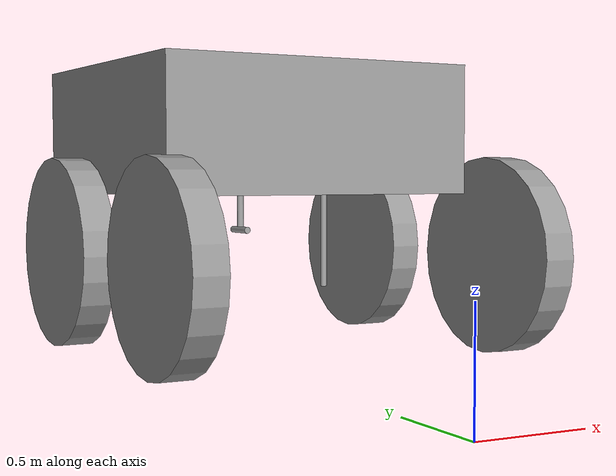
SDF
<?xml version='1.0'?>
<sdf version='1.7'>
  <model name='robot_with_arm_final'>
    <link name='link_0'>
      <inertial>
        <mass>1</mass>
        <inertia>
          <ixx>0.166667</ixx>
          <ixy>0</ixy>
          <ixz>0</ixz>
          <iyy>0.166667</iyy>
          <iyz>0</iyz>
          <izz>0.166667</izz>
        </inertia>
        <pose>0 0 0 0 -0 0</pose>
      </inertial>
      <pose>0.16 0 0.23032 0 -0 0</pose>
      <gravity>1</gravity>
      <self_collide>0</self_collide>
      <kinematic>0</kinematic>
      <enable_wind>0</enable_wind>
      <visual name='visual'>
        <pose>0 0 0 0 -0 0</pose>
        <geometry>
          <box>
            <size>1 1 0.4</size>
          </box>
        </geometry>
        <material>
          <lighting>1</lighting>
          <script>
            <uri>file://media/materials/scripts/gazebo.material</uri>
            <name>Gazebo/Grey</name>
          </script>
          <shader type='pixel'>
            <normal_map>__default__</normal_map>
          </shader>
          <ambient>0.3 0.3 0.3 1</ambient>
          <diffuse>0.7 0.7 0.7 1</diffuse>
          <specular>0.01 0.01 0.01 1</specular>
          <emissive>0 0 0 1</emissive>
        </material>
        <transparency>0</transparency>
        <cast_shadows>1</cast_shadows>
      </visual>
      <collision name='collision'>
        <laser_retro>0</laser_retro>
        <max_contacts>10</max_contacts>
        <pose>0 0 0 0 -0 0</pose>
        <geometry>
          <box>
            <size>1 1 0.4</size>
          </box>
        </geometry>
        <surface>
          <friction>
            <ode>
              <mu>1</mu>
              <mu2>1</mu2>
              <fdir1>0 0 0</fdir1>
              <slip1>0</slip1>
              <slip2>0</slip2>
            </ode>
            <torsional>
              <coefficient>1</coefficient>
              <patch_radius>0</patch_radius>
              <surface_radius>0</surface_radius>
              <use_patch_radius>1</use_patch_radius>
              <ode>
                <slip>0</slip>
              </ode>
            </torsional>
          </friction>
          <bounce>
            <restitution_coefficient>0</restitution_coefficient>
            <threshold>1e+06</threshold>
          </bounce>
          <contact>
            <collide_without_contact>0</collide_without_contact>
            <collide_without_contact_bitmask>1</collide_without_contact_bitmask>
            <collide_bitmask>1</collide_bitmask>
            <ode>
              <soft_cfm>0</soft_cfm>
              <soft_erp>0.2</soft_erp>
              <kp>1e+13</kp>
              <kd>1</kd>
              <max_vel>0.01</max_vel>
              <min_depth>0</min_depth>
            </ode>
            <bullet>
              <split_impulse>1</split_impulse>
              <split_impulse_penetration_threshold>-0.01</split_impulse_penetration_threshold>
              <soft_cfm>0</soft_cfm>
              <soft_erp>0.2</soft_erp>
              <kp>1e+13</kp>
              <kd>1</kd>
            </bullet>
          </contact>
        </surface>
      </collision>
    </link>
    <link name='link_1'>
      <inertial>
        <mass>1</mass>
        <inertia>
          <ixx>0.145833</ixx>
          <ixy>0</ixy>
          <ixz>0</ixz>
          <iyy>0.145833</iyy>
          <iyz>0</iyz>
          <izz>0.125</izz>
        </inertia>
        <pose>0 0 0 0 -0 0</pose>
      </inertial>
      <pose>-0.44 0.55 -0.15758 -1.5708 -0 0</pose>
      <gravity>1</gravity>
      <self_collide>0</self_collide>
      <kinematic>0</kinematic>
      <enable_wind>0</enable_wind>
      <visual name='visual'>
        <pose>0 0 0 0 -0 0</pose>
        <geometry>
          <cylinder>
            <radius>0.3</radius>
            <length>0.1</length>
          </cylinder>
        </geometry>
        <material>
          <lighting>1</lighting>
          <script>
            <uri>file://media/materials/scripts/gazebo.material</uri>
            <name>Gazebo/Grey</name>
          </script>
          <shader type='pixel'>
            <normal_map>__default__</normal_map>
          </shader>
          <ambient>0.3 0.3 0.3 1</ambient>
          <diffuse>0.7 0.7 0.7 1</diffuse>
          <specular>0.01 0.01 0.01 1</specular>
          <emissive>0 0 0 1</emissive>
        </material>
        <transparency>0</transparency>
        <cast_shadows>1</cast_shadows>
      </visual>
      <collision name='collision'>
        <laser_retro>0</laser_retro>
        <max_contacts>10</max_contacts>
        <pose>0 0 0 0 -0 0</pose>
        <geometry>
          <cylinder>
            <radius>0.3</radius>
            <length>0.1</length>
          </cylinder>
        </geometry>
        <surface>
          <friction>
            <ode>
              <mu>1</mu>
              <mu2>1</mu2>
              <fdir1>0 0 0</fdir1>
              <slip1>0</slip1>
              <slip2>0</slip2>
            </ode>
            <torsional>
              <coefficient>1</coefficient>
              <patch_radius>0</patch_radius>
              <surface_radius>0</surface_radius>
              <use_patch_radius>1</use_patch_radius>
              <ode>
                <slip>0</slip>
              </ode>
            </torsional>
          </friction>
          <bounce>
            <restitution_coefficient>0</restitution_coefficient>
            <threshold>1e+06</threshold>
          </bounce>
          <contact>
            <collide_without_contact>0</collide_without_contact>
            <collide_without_contact_bitmask>1</collide_without_contact_bitmask>
            <collide_bitmask>1</collide_bitmask>
            <ode>
              <soft_cfm>0</soft_cfm>
              <soft_erp>0.2</soft_erp>
              <kp>1e+13</kp>
              <kd>1</kd>
              <max_vel>0.01</max_vel>
              <min_depth>0</min_depth>
            </ode>
            <bullet>
              <split_impulse>1</split_impulse>
              <split_impulse_penetration_threshold>-0.01</split_impulse_penetration_threshold>
              <soft_cfm>0</soft_cfm>
              <soft_erp>0.2</soft_erp>
              <kp>1e+13</kp>
              <kd>1</kd>
            </bullet>
          </contact>
        </surface>
      </collision>
    </link>
    <link name='link_1_clone'>
      <inertial>
        <mass>1</mass>
        <inertia>
          <ixx>0.145833</ixx>
          <ixy>0</ixy>
          <ixz>0</ixz>
          <iyy>0.145833</iyy>
          <iyz>0</iyz>
          <izz>0.125</izz>
        </inertia>
        <pose>0 0 0 0 -0 0</pose>
      </inertial>
      <pose>0.36 -0.55 -0.15758 -1.5708 -0 0</pose>
      <gravity>1</gravity>
      <self_collide>0</self_collide>
      <kinematic>0</kinematic>
      <enable_wind>0</enable_wind>
      <visual name='visual'>
        <pose>0 0 0 0 -0 0</pose>
        <geometry>
          <cylinder>
            <radius>0.3</radius>
            <length>0.1</length>
          </cylinder>
        </geometry>
        <material>
          <lighting>1</lighting>
          <script>
            <uri>file://media/materials/scripts/gazebo.material</uri>
            <name>Gazebo/Grey</name>
          </script>
          <shader type='pixel'>
            <normal_map>__default__</normal_map>
          </shader>
          <ambient>0.3 0.3 0.3 1</ambient>
          <diffuse>0.7 0.7 0.7 1</diffuse>
          <specular>0.01 0.01 0.01 1</specular>
          <emissive>0 0 0 1</emissive>
        </material>
        <transparency>0</transparency>
        <cast_shadows>1</cast_shadows>
      </visual>
      <collision name='collision'>
        <laser_retro>0</laser_retro>
        <max_contacts>10</max_contacts>
        <pose>0 0 0 0 -0 0</pose>
        <geometry>
          <cylinder>
            <radius>0.3</radius>
            <length>0.1</length>
          </cylinder>
        </geometry>
        <surface>
          <friction>
            <ode>
              <mu>1</mu>
              <mu2>1</mu2>
              <fdir1>0 0 0</fdir1>
              <slip1>0</slip1>
              <slip2>0</slip2>
            </ode>
            <torsional>
              <coefficient>1</coefficient>
              <patch_radius>0</patch_radius>
              <surface_radius>0</surface_radius>
              <use_patch_radius>1</use_patch_radius>
              <ode>
                <slip>0</slip>
              </ode>
            </torsional>
          </friction>
          <bounce>
            <restitution_coefficient>0</restitution_coefficient>
            <threshold>1e+06</threshold>
          </bounce>
          <contact>
            <collide_without_contact>0</collide_without_contact>
            <collide_without_contact_bitmask>1</collide_without_contact_bitmask>
            <collide_bitmask>1</collide_bitmask>
            <ode>
              <soft_cfm>0</soft_cfm>
              <soft_erp>0.2</soft_erp>
              <kp>1e+13</kp>
              <kd>1</kd>
              <max_vel>0.01</max_vel>
              <min_depth>0</min_depth>
            </ode>
            <bullet>
              <split_impulse>1</split_impulse>
              <split_impulse_penetration_threshold>-0.01</split_impulse_penetration_threshold>
              <soft_cfm>0</soft_cfm>
              <soft_erp>0.2</soft_erp>
              <kp>1e+13</kp>
              <kd>1</kd>
            </bullet>
          </contact>
        </surface>
      </collision>
    </link>
    <link name='link_1_clone_0'>
      <inertial>
        <mass>1</mass>
        <inertia>
          <ixx>0.145833</ixx>
          <ixy>0</ixy>
          <ixz>0</ixz>
          <iyy>0.145833</iyy>
          <iyz>0</iyz>
          <izz>0.125</izz>
        </inertia>
        <pose>0 0 0 0 -0 0</pose>
      </inertial>
      <pose>0.36 0.55 -0.15758 -1.5708 -0 0</pose>
      <gravity>1</gravity>
      <self_collide>0</self_collide>
      <kinematic>0</kinematic>
      <enable_wind>0</enable_wind>
      <visual name='visual'>
        <pose>0 0 0 0 -0 0</pose>
        <geometry>
          <cylinder>
            <radius>0.3</radius>
            <length>0.1</length>
          </cylinder>
        </geometry>
        <material>
          <lighting>1</lighting>
          <script>
            <uri>file://media/materials/scripts/gazebo.material</uri>
            <name>Gazebo/Grey</name>
          </script>
          <shader type='pixel'>
            <normal_map>__default__</normal_map>
          </shader>
          <ambient>0.3 0.3 0.3 1</ambient>
          <diffuse>0.7 0.7 0.7 1</diffuse>
          <specular>0.01 0.01 0.01 1</specular>
          <emissive>0 0 0 1</emissive>
        </material>
        <transparency>0</transparency>
        <cast_shadows>1</cast_shadows>
      </visual>
      <collision name='collision'>
        <laser_retro>0</laser_retro>
        <max_contacts>10</max_contacts>
        <pose>0 0 0 0 -0 0</pose>
        <geometry>
          <cylinder>
            <radius>0.3</radius>
            <length>0.1</length>
          </cylinder>
        </geometry>
        <surface>
          <friction>
            <ode>
              <mu>1</mu>
              <mu2>1</mu2>
              <fdir1>0 0 0</fdir1>
              <slip1>0</slip1>
              <slip2>0</slip2>
            </ode>
            <torsional>
              <coefficient>1</coefficient>
              <patch_radius>0</patch_radius>
              <surface_radius>0</surface_radius>
              <use_patch_radius>1</use_patch_radius>
              <ode>
                <slip>0</slip>
              </ode>
            </torsional>
          </friction>
          <bounce>
            <restitution_coefficient>0</restitution_coefficient>
            <threshold>1e+06</threshold>
          </bounce>
          <contact>
            <collide_without_contact>0</collide_without_contact>
            <collide_without_contact_bitmask>1</collide_without_contact_bitmask>
            <collide_bitmask>1</collide_bitmask>
            <ode>
              <soft_cfm>0</soft_cfm>
              <soft_erp>0.2</soft_erp>
              <kp>1e+13</kp>
              <kd>1</kd>
              <max_vel>0.01</max_vel>
              <min_depth>0</min_depth>
            </ode>
            <bullet>
              <split_impulse>1</split_impulse>
              <split_impulse_penetration_threshold>-0.01</split_impulse_penetration_threshold>
              <soft_cfm>0</soft_cfm>
              <soft_erp>0.2</soft_erp>
              <kp>1e+13</kp>
              <kd>1</kd>
            </bullet>
          </contact>
        </surface>
      </collision>
    </link>
    <link name='link_1_clone_1'>
      <inertial>
        <mass>1</mass>
        <inertia>
          <ixx>0.145833</ixx>
          <ixy>0</ixy>
          <ixz>0</ixz>
          <iyy>0.145833</iyy>
          <iyz>0</iyz>
          <izz>0.125</izz>
        </inertia>
        <pose>0 0 0 0 -0 0</pose>
      </inertial>
      <pose>-0.44 -0.55 -0.15758 -1.5708 -0 0</pose>
      <gravity>1</gravity>
      <self_collide>0</self_collide>
      <kinematic>0</kinematic>
      <enable_wind>0</enable_wind>
      <visual name='visual'>
        <pose>0 0 0 0 -0 0</pose>
        <geometry>
          <cylinder>
            <radius>0.3</radius>
            <length>0.1</length>
          </cylinder>
        </geometry>
        <material>
          <lighting>1</lighting>
          <script>
            <uri>file://media/materials/scripts/gazebo.material</uri>
            <name>Gazebo/Grey</name>
          </script>
          <shader type='pixel'>
            <normal_map>__default__</normal_map>
          </shader>
          <ambient>0.3 0.3 0.3 1</ambient>
          <diffuse>0.7 0.7 0.7 1</diffuse>
          <specular>0.01 0.01 0.01 1</specular>
          <emissive>0 0 0 1</emissive>
        </material>
        <transparency>0</transparency>
        <cast_shadows>1</cast_shadows>
      </visual>
      <collision name='collision'>
        <laser_retro>0</laser_retro>
        <max_contacts>10</max_contacts>
        <pose>0 0 0 0 -0 0</pose>
        <geometry>
          <cylinder>
            <radius>0.3</radius>
            <length>0.1</length>
          </cylinder>
        </geometry>
        <surface>
          <friction>
            <ode>
              <mu>1</mu>
              <mu2>1</mu2>
              <fdir1>0 0 0</fdir1>
              <slip1>0</slip1>
              <slip2>0</slip2>
            </ode>
            <torsional>
              <coefficient>1</coefficient>
              <patch_radius>0</patch_radius>
              <surface_radius>0</surface_radius>
              <use_patch_radius>1</use_patch_radius>
              <ode>
                <slip>0</slip>
              </ode>
            </torsional>
          </friction>
          <bounce>
            <restitution_coefficient>0</restitution_coefficient>
            <threshold>1e+06</threshold>
          </bounce>
          <contact>
            <collide_without_contact>0</collide_without_contact>
            <collide_without_contact_bitmask>1</collide_without_contact_bitmask>
            <collide_bitmask>1</collide_bitmask>
            <ode>
              <soft_cfm>0</soft_cfm>
              <soft_erp>0.2</soft_erp>
              <kp>1e+13</kp>
              <kd>1</kd>
              <max_vel>0.01</max_vel>
              <min_depth>0</min_depth>
            </ode>
            <bullet>
              <split_impulse>1</split_impulse>
              <split_impulse_penetration_threshold>-0.01</split_impulse_penetration_threshold>
              <soft_cfm>0</soft_cfm>
              <soft_erp>0.2</soft_erp>
              <kp>1e+13</kp>
              <kd>1</kd>
            </bullet>
          </contact>
        </surface>
      </collision>
    </link>
      <link name='link_6'>
        <inertial>
          <mass>0.001</mass>
          <inertia>
            <ixx>1.336e-05</ixx>
            <ixy>0</ixy>
            <ixz>0</ixz>
            <iyy>1.336e-05</iyy>
            <iyz>0</iyz>
            <izz>5e-08</izz>
          </inertia>
          <pose>0 0 0 0 -0 0</pose>
        </inertial>
        <pose>-0 -0.18746 -0.07244 0 -0 0</pose>
        <gravity>1</gravity>
        <self_collide>0</self_collide>
        <kinematic>0</kinematic>
        <enable_wind>0</enable_wind>
        <visual name='visual'>
          <pose>0 0 0 0 -0 0</pose>
          <geometry>
            <cylinder>
              <radius>0.01</radius>
              <length>0.4</length>
            </cylinder>
          </geometry>
          <material>
            <lighting>1</lighting>
            <script>
              <uri>file://media/materials/scripts/gazebo.material</uri>
              <name>Gazebo/Grey</name>
            </script>
            <shader type='pixel'>
              <normal_map>__default__</normal_map>
            </shader>
            <ambient>0.3 0.3 0.3 1</ambient>
            <diffuse>0.7 0.7 0.7 1</diffuse>
            <specular>0.01 0.01 0.01 1</specular>
            <emissive>0 0 0 1</emissive>
          </material>
          <transparency>0</transparency>
          <cast_shadows>1</cast_shadows>
        </visual>
        <collision name='collision'>
          <laser_retro>0</laser_retro>
          <max_contacts>10</max_contacts>
          <pose>0 0 0 0 -0 0</pose>
          <geometry>
            <cylinder>
              <radius>0.01</radius>
              <length>0.4</length>
            </cylinder>
          </geometry>
          <surface>
            <friction>
              <ode>
                <mu>1</mu>
                <mu2>1</mu2>
                <fdir1>0 0 0</fdir1>
                <slip1>0</slip1>
                <slip2>0</slip2>
              </ode>
              <torsional>
                <coefficient>1</coefficient>
                <patch_radius>0</patch_radius>
                <surface_radius>0</surface_radius>
                <use_patch_radius>1</use_patch_radius>
                <ode>
                  <slip>0</slip>
                </ode>
              </torsional>
            </friction>
            <bounce>
              <restitution_coefficient>0</restitution_coefficient>
              <threshold>1e+06</threshold>
            </bounce>
            <contact>
              <collide_without_contact>0</collide_without_contact>
              <collide_without_contact_bitmask>1</collide_without_contact_bitmask>
              <collide_bitmask>1</collide_bitmask>
              <ode>
                <soft_cfm>0</soft_cfm>
                <soft_erp>0.2</soft_erp>
                <kp>1e+13</kp>
                <kd>1</kd>
                <max_vel>0.01</max_vel>
                <min_depth>0</min_depth>
              </ode>
              <bullet>
                <split_impulse>1</split_impulse>
                <split_impulse_penetration_threshold>-0.01</split_impulse_penetration_threshold>
                <soft_cfm>0</soft_cfm>
                <soft_erp>0.2</soft_erp>
                <kp>1e+13</kp>
                <kd>1</kd>
              </bullet>
            </contact>
          </surface>
        </collision>
      </link>
      <link name='link_6_clone'>
        <inertial>
          <mass>0.001</mass>
          <inertia>
            <ixx>3.36e-06</ixx>
            <ixy>0</ixy>
            <ixz>0</ixz>
            <iyy>3.36e-06</iyy>
            <iyz>0</iyz>
            <izz>5e-08</izz>
          </inertia>
          <pose>0 0 0 0 -0 0</pose>
        </inertial>
        <pose>-0 0.11246 0.02744 0 -0 0</pose>
        <gravity>1</gravity>
        <self_collide>0</self_collide>
        <kinematic>0</kinematic>
        <enable_wind>0</enable_wind>
        <visual name='visual'>
          <pose>0 0 0 0 -0 0</pose>
          <geometry>
            <cylinder>
              <radius>0.01</radius>
              <length>0.2</length>
            </cylinder>
          </geometry>
          <material>
            <lighting>1</lighting>
            <script>
              <uri>file://media/materials/scripts/gazebo.material</uri>
              <name>Gazebo/Grey</name>
            </script>
            <shader type='pixel'>
              <normal_map>__default__</normal_map>
            </shader>
            <ambient>0.3 0.3 0.3 1</ambient>
            <diffuse>0.7 0.7 0.7 1</diffuse>
            <specular>0.01 0.01 0.01 1</specular>
            <emissive>0 0 0 1</emissive>
          </material>
          <transparency>0</transparency>
          <cast_shadows>1</cast_shadows>
        </visual>
        <collision name='collision'>
          <laser_retro>0</laser_retro>
          <max_contacts>10</max_contacts>
          <pose>0 0 0 0 -0 0</pose>
          <geometry>
            <cylinder>
              <radius>0.01</radius>
              <length>0.2</length>
            </cylinder>
          </geometry>
          <surface>
            <friction>
              <ode>
                <mu>1</mu>
                <mu2>1</mu2>
                <fdir1>0 0 0</fdir1>
                <slip1>0</slip1>
                <slip2>0</slip2>
              </ode>
              <torsional>
                <coefficient>1</coefficient>
                <patch_radius>0</patch_radius>
                <surface_radius>0</surface_radius>
                <use_patch_radius>1</use_patch_radius>
                <ode>
                  <slip>0</slip>
                </ode>
              </torsional>
            </friction>
            <bounce>
              <restitution_coefficient>0</restitution_coefficient>
              <threshold>1e+06</threshold>
            </bounce>
            <contact>
              <collide_without_contact>0</collide_without_contact>
              <collide_without_contact_bitmask>1</collide_without_contact_bitmask>
              <collide_bitmask>1</collide_bitmask>
              <ode>
                <soft_cfm>0</soft_cfm>
                <soft_erp>0.2</soft_erp>
                <kp>1e+13</kp>
                <kd>1</kd>
                <max_vel>0.01</max_vel>
                <min_depth>0</min_depth>
              </ode>
              <bullet>
                <split_impulse>1</split_impulse>
                <split_impulse_penetration_threshold>-0.01</split_impulse_penetration_threshold>
                <soft_cfm>0</soft_cfm>
                <soft_erp>0.2</soft_erp>
                <kp>1e+13</kp>
                <kd>1</kd>
              </bullet>
            </contact>
          </surface>
        </collision>
      </link>
      <link name='link_6_clone_clone'>
        <inertial>
          <mass>0.001</mass>
          <inertia>
            <ixx>8.6e-07</ixx>
            <ixy>0</ixy>
            <ixz>0</ixz>
            <iyy>8.6e-07</iyy>
            <iyz>0</iyz>
            <izz>5e-08</izz>
          </inertia>
          <pose>0 0 0 0 -0 0</pose>
        </inertial>
        <pose>-0 0.11246 -0.082559 5e-06 1.57 5e-06</pose>
        <gravity>1</gravity>
        <self_collide>0</self_collide>
        <kinematic>0</kinematic>
        <enable_wind>0</enable_wind>
        <visual name='visual'>
          <pose>0 0 0 0 -0 0</pose>
          <geometry>
            <cylinder>
              <radius>0.01</radius>
              <length>0.1</length>
            </cylinder>
          </geometry>
          <material>
            <lighting>1</lighting>
            <script>
              <uri>file://media/materials/scripts/gazebo.material</uri>
              <name>Gazebo/Grey</name>
            </script>
            <shader type='pixel'>
              <normal_map>__default__</normal_map>
            </shader>
            <ambient>0.3 0.3 0.3 1</ambient>
            <diffuse>0.7 0.7 0.7 1</diffuse>
            <specular>0.01 0.01 0.01 1</specular>
            <emissive>0 0 0 1</emissive>
          </material>
          <transparency>0</transparency>
          <cast_shadows>1</cast_shadows>
        </visual>
        <collision name='collision'>
          <laser_retro>0</laser_retro>
          <max_contacts>10</max_contacts>
          <pose>0 0 0 0 -0 0</pose>
          <geometry>
            <cylinder>
              <radius>0.01</radius>
              <length>0.1</length>
            </cylinder>
          </geometry>
          <surface>
            <friction>
              <ode>
                <mu>1</mu>
                <mu2>1</mu2>
                <fdir1>0 0 0</fdir1>
                <slip1>0</slip1>
                <slip2>0</slip2>
              </ode>
              <torsional>
                <coefficient>1</coefficient>
                <patch_radius>0</patch_radius>
                <surface_radius>0</surface_radius>
                <use_patch_radius>1</use_patch_radius>
                <ode>
                  <slip>0</slip>
                </ode>
              </torsional>
            </friction>
            <bounce>
              <restitution_coefficient>0</restitution_coefficient>
              <threshold>1e+06</threshold>
            </bounce>
            <contact>
              <collide_without_contact>0</collide_without_contact>
              <collide_without_contact_bitmask>1</collide_without_contact_bitmask>
              <collide_bitmask>1</collide_bitmask>
              <ode>
                <soft_cfm>0</soft_cfm>
                <soft_erp>0.2</soft_erp>
                <kp>1e+13</kp>
                <kd>1</kd>
                <max_vel>0.01</max_vel>
                <min_depth>0</min_depth>
              </ode>
              <bullet>
                <split_impulse>1</split_impulse>
                <split_impulse_penetration_threshold>-0.01</split_impulse_penetration_threshold>
                <soft_cfm>0</soft_cfm>
                <soft_erp>0.2</soft_erp>
                <kp>1e+13</kp>
                <kd>1</kd>
              </bullet>
            </contact>
          </surface>
        </collision>
      </link>
      <link name='link_7'>
        <inertial>
          <mass>0.001</mass>
          <inertia>
            <ixx>7.52e-06</ixx>
            <ixy>0</ixy>
            <ixz>0</ixz>
            <iyy>7.52e-06</iyy>
            <iyz>0</iyz>
            <izz>5e-08</izz>
          </inertia>
          <pose>0 0 0 0 -0 0</pose>
        </inertial>
        <pose>-0 -0.03746 0.127559 1.57 -0 0</pose>
        <gravity>1</gravity>
        <self_collide>0</self_collide>
        <kinematic>0</kinematic>
        <enable_wind>0</enable_wind>
        <visual name='visual'>
          <pose>0 0 0 0 -0 0</pose>
          <geometry>
            <cylinder>
              <radius>0.01</radius>
              <length>0.3</length>
            </cylinder>
          </geometry>
          <material>
            <lighting>1</lighting>
            <script>
              <uri>file://media/materials/scripts/gazebo.material</uri>
              <name>Gazebo/Grey</name>
            </script>
            <shader type='pixel'>
              <normal_map>__default__</normal_map>
            </shader>
            <ambient>0.3 0.3 0.3 1</ambient>
            <diffuse>0.7 0.7 0.7 1</diffuse>
            <specular>0.01 0.01 0.01 1</specular>
            <emissive>0 0 0 1</emissive>
          </material>
          <transparency>0</transparency>
          <cast_shadows>1</cast_shadows>
        </visual>
        <collision name='collision'>
          <laser_retro>0</laser_retro>
          <max_contacts>10</max_contacts>
          <pose>0 0 0 0 -0 0</pose>
          <geometry>
            <cylinder>
              <radius>0.01</radius>
              <length>0.3</length>
            </cylinder>
          </geometry>
          <surface>
            <friction>
              <ode>
                <mu>1</mu>
                <mu2>1</mu2>
                <fdir1>0 0 0</fdir1>
                <slip1>0</slip1>
                <slip2>0</slip2>
              </ode>
              <torsional>
                <coefficient>1</coefficient>
                <patch_radius>0</patch_radius>
                <surface_radius>0</surface_radius>
                <use_patch_radius>1</use_patch_radius>
                <ode>
                  <slip>0</slip>
                </ode>
              </torsional>
            </friction>
            <bounce>
              <restitution_coefficient>0</restitution_coefficient>
              <threshold>1e+06</threshold>
            </bounce>
            <contact>
              <collide_without_contact>0</collide_without_contact>
              <collide_without_contact_bitmask>1</collide_without_contact_bitmask>
              <collide_bitmask>1</collide_bitmask>
              <ode>
                <soft_cfm>0</soft_cfm>
                <soft_erp>0.2</soft_erp>
                <kp>1e+13</kp>
                <kd>1</kd>
                <max_vel>0.01</max_vel>
                <min_depth>0</min_depth>
              </ode>
              <bullet>
                <split_impulse>1</split_impulse>
                <split_impulse_penetration_threshold>-0.01</split_impulse_penetration_threshold>
                <soft_cfm>0</soft_cfm>
                <soft_erp>0.2</soft_erp>
                <kp>1e+13</kp>
                <kd>1</kd>
              </bullet>
            </contact>
          </surface>
        </collision>
      </link>
      <joint name='link_6_JOINT_8' type='fixed'>
        <parent>link_6</parent>
        <child>link_7</child>
        <pose>0 0 0 0 -0 0</pose>
        <physics>
          <ode>
            <limit>
              <cfm>0</cfm>
              <erp>0.2</erp>
            </limit>
            <suspension>
              <cfm>0</cfm>
              <erp>0.2</erp>
            </suspension>
          </ode>
        </physics>
      </joint>
      <joint name='link_6_clone_JOINT_10' type='revolute'>
        <parent>link_6_clone</parent>
        <child>link_6_clone_clone</child>
        <pose>0 0 0 0 0.06 0</pose>
        <axis>
          <xyz>1 0 0</xyz>
          <limit>
            <lower>-1.79769e+308</lower>
            <upper>1.79769e+308</upper>
            <effort>-1</effort>
            <velocity>-1</velocity>
          </limit>
          <dynamics>
            <spring_reference>0</spring_reference>
            <spring_stiffness>0</spring_stiffness>
            <damping>0</damping>
          </dynamics>
        </axis>
        <physics>
          <ode>
            <limit>
              <cfm>0</cfm>
              <erp>0.2</erp>
            </limit>
            <suspension>
              <cfm>0</cfm>
              <erp>0.2</erp>
            </suspension>
          </ode>
        </physics>
      </joint>
      <joint name='link_7_JOINT_9' type='prismatic'>
        <parent>link_7</parent>
        <child>link_6_clone</child>
        <pose>0 0 0 0 -0 0</pose>
        <axis>
          <xyz>-0 -0 -1</xyz>
          <limit>
            <lower>-1.79769e+308</lower>
            <upper>1.79769e+308</upper>
            <effort>-1</effort>
            <velocity>-1</velocity>
          </limit>
          <dynamics>
            <spring_reference>0</spring_reference>
            <spring_stiffness>0</spring_stiffness>
            <damping>0</damping>
          </dynamics>
        </axis>
        <physics>
          <ode>
            <limit>
              <cfm>0</cfm>
              <erp>0.2</erp>
            </limit>
            <suspension>
              <cfm>0</cfm>
              <erp>0.2</erp>
            </suspension>
          </ode>
        </physics>
      </joint>
      <static>0</static>
      <allow_auto_disable>1</allow_auto_disable>
      <pose>-0.789186 -0.012561 0.854583 0 -0 1.61257</pose>
    <joint name='link_0_JOINT_1' type='revolute'>
      <parent>link_0</parent>
      <child>link_1</child>
      <pose>0 0 0 0 -0 0</pose>
      <axis>
        <xyz>-0 -0 -1</xyz>
        <limit>
          <lower>-1.79769e+308</lower>
          <upper>1.79769e+308</upper>
          <effort>-1</effort>
          <velocity>-1</velocity>
        </limit>
        <dynamics>
          <spring_reference>0</spring_reference>
          <spring_stiffness>0</spring_stiffness>
          <damping>0</damping>
          <friction>0</friction>
        </dynamics>
      </axis>
      <physics>
        <ode>
          <limit>
            <cfm>0</cfm>
            <erp>0.2</erp>
          </limit>
          <suspension>
            <cfm>0</cfm>
            <erp>0.2</erp>
          </suspension>
        </ode>
      </physics>
    </joint>
    <joint name='link_0_JOINT_2' type='revolute'>
      <parent>link_0</parent>
      <child>link_1_clone_0</child>
      <pose>0 0 0 0 -0 0</pose>
      <axis>
        <xyz>-0 -0 -1</xyz>
        <limit>
          <lower>-1.79769e+308</lower>
          <upper>1.79769e+308</upper>
          <effort>-1</effort>
          <velocity>-1</velocity>
        </limit>
        <dynamics>
          <spring_reference>0</spring_reference>
          <spring_stiffness>0</spring_stiffness>
          <damping>0</damping>
          <friction>0</friction>
        </dynamics>
      </axis>
      <physics>
        <ode>
          <limit>
            <cfm>0</cfm>
            <erp>0.2</erp>
          </limit>
          <suspension>
            <cfm>0</cfm>
            <erp>0.2</erp>
          </suspension>
        </ode>
      </physics>
    </joint>
    <joint name='link_0_JOINT_4' type='revolute'>
      <parent>link_0</parent>
      <child>link_1_clone</child>
      <pose>0 0 0 0 -0 0</pose>
      <axis>
        <xyz>-0 -0 -1</xyz>
        <limit>
          <lower>-1.79769e+308</lower>
          <upper>1.79769e+308</upper>
          <effort>-1</effort>
          <velocity>-1</velocity>
        </limit>
        <dynamics>
          <spring_reference>0</spring_reference>
          <spring_stiffness>0</spring_stiffness>
          <damping>0</damping>
          <friction>0</friction>
        </dynamics>
      </axis>
      <physics>
        <ode>
          <limit>
            <cfm>0</cfm>
            <erp>0.2</erp>
          </limit>
          <suspension>
            <cfm>0</cfm>
            <erp>0.2</erp>
          </suspension>
        </ode>
      </physics>
    </joint>
    <joint name='link_0_JOINT_5' type='revolute'>
      <parent>link_0</parent>
      <child>link_1_clone_1</child>
      <pose>0 0 0 0 -0 0</pose>
      <axis>
        <xyz>-0 -0 -1</xyz>
        <limit>
          <lower>-1.79769e+308</lower>
          <upper>1.79769e+308</upper>
          <effort>-1</effort>
          <velocity>-1</velocity>
        </limit>
        <dynamics>
          <spring_reference>0</spring_reference>
          <spring_stiffness>0</spring_stiffness>
          <damping>0</damping>
          <friction>0</friction>
        </dynamics>
      </axis>
      <physics>
        <ode>
          <limit>
            <cfm>0</cfm>
            <erp>0.2</erp>
          </limit>
          <suspension>
            <cfm>0</cfm>
            <erp>0.2</erp>
          </suspension>
        </ode>
      </physics>
    </joint>
    <joint name='link_0_JOINT_7' type='revolute'>
      <parent>link_0</parent>
      <child>link_6</child>
      <pose>0 0 0 0 -0 0</pose>
      <axis>
        <xyz>0 0 1</xyz>
        <limit>
          <lower>-1.79769e+308</lower>
          <upper>1.79769e+308</upper>
          <effort>-1</effort>
          <velocity>-1</velocity>
        </limit>
        <dynamics>
          <spring_reference>0</spring_reference>
          <spring_stiffness>0</spring_stiffness>
          <damping>0</damping>
          <friction>0</friction>
        </dynamics>
      </axis>
      <physics>
        <ode>
          <limit>
            <cfm>0</cfm>
            <erp>0.2</erp>
          </limit>
          <suspension>
            <cfm>0</cfm>
            <erp>0.2</erp>
          </suspension>
        </ode>
      </physics>
    </joint>
    <static>0</static>
    <allow_auto_disable>1</allow_auto_disable>
    <plugin name='follower' filename='libFollowerPlugin.so'/>
  </model>
</sdf>
